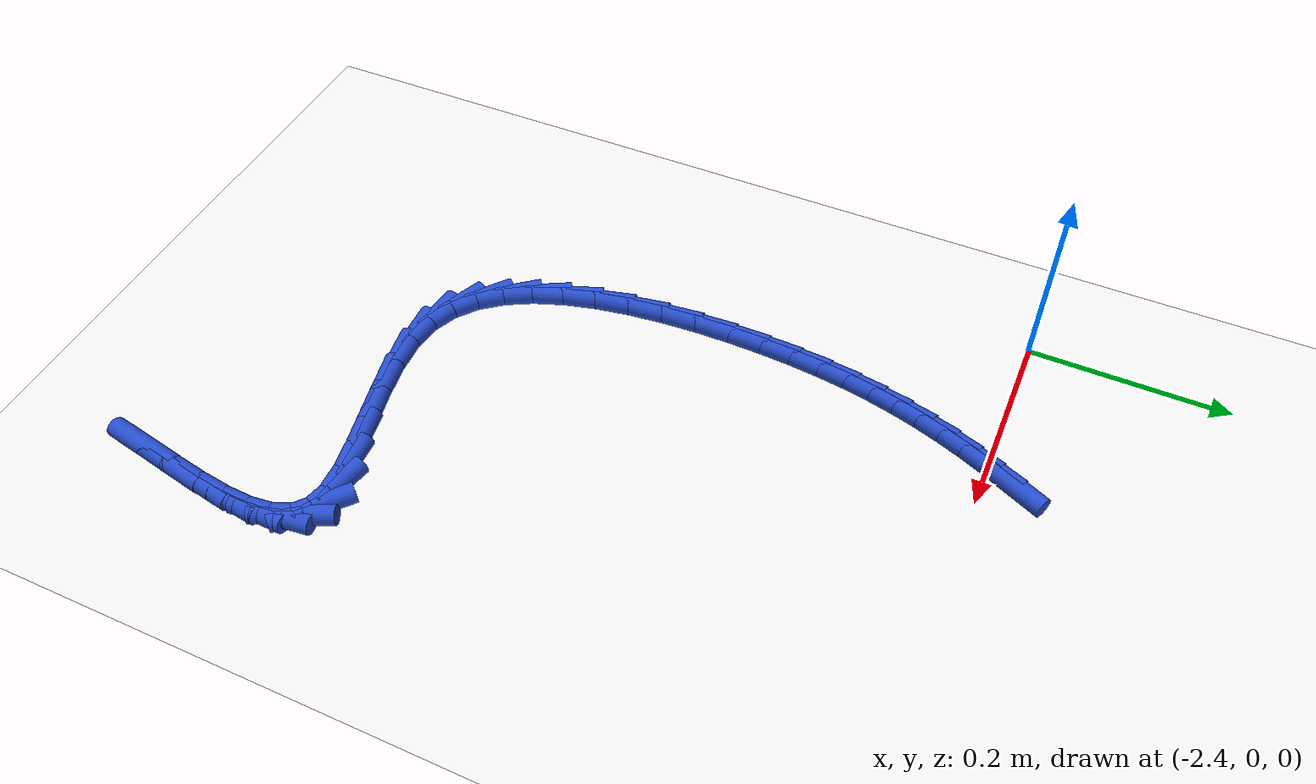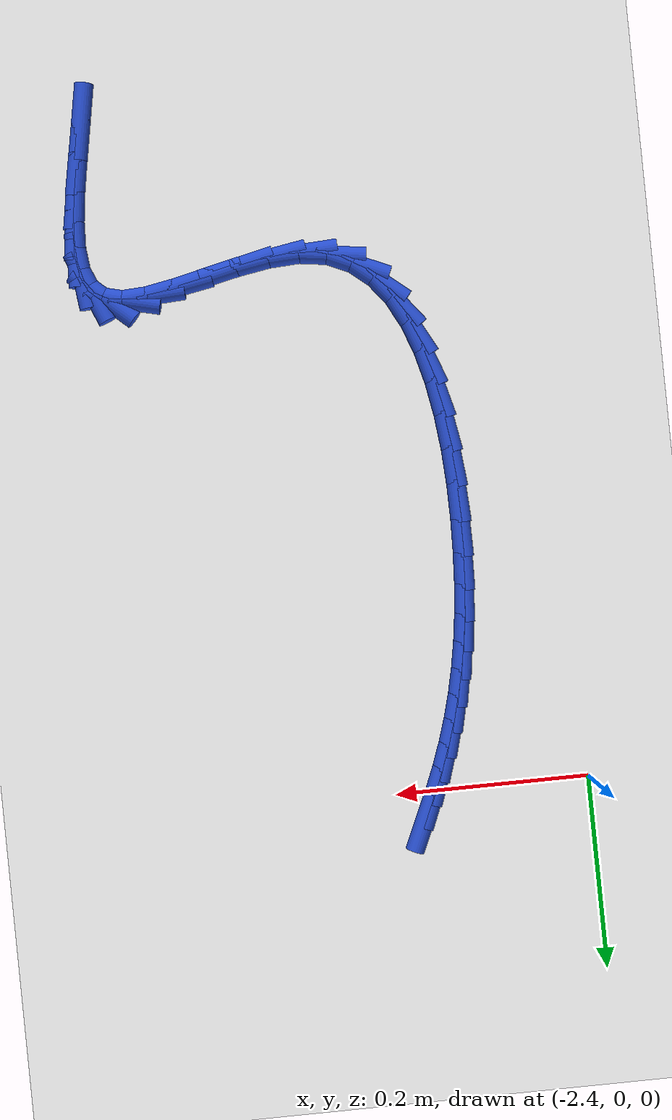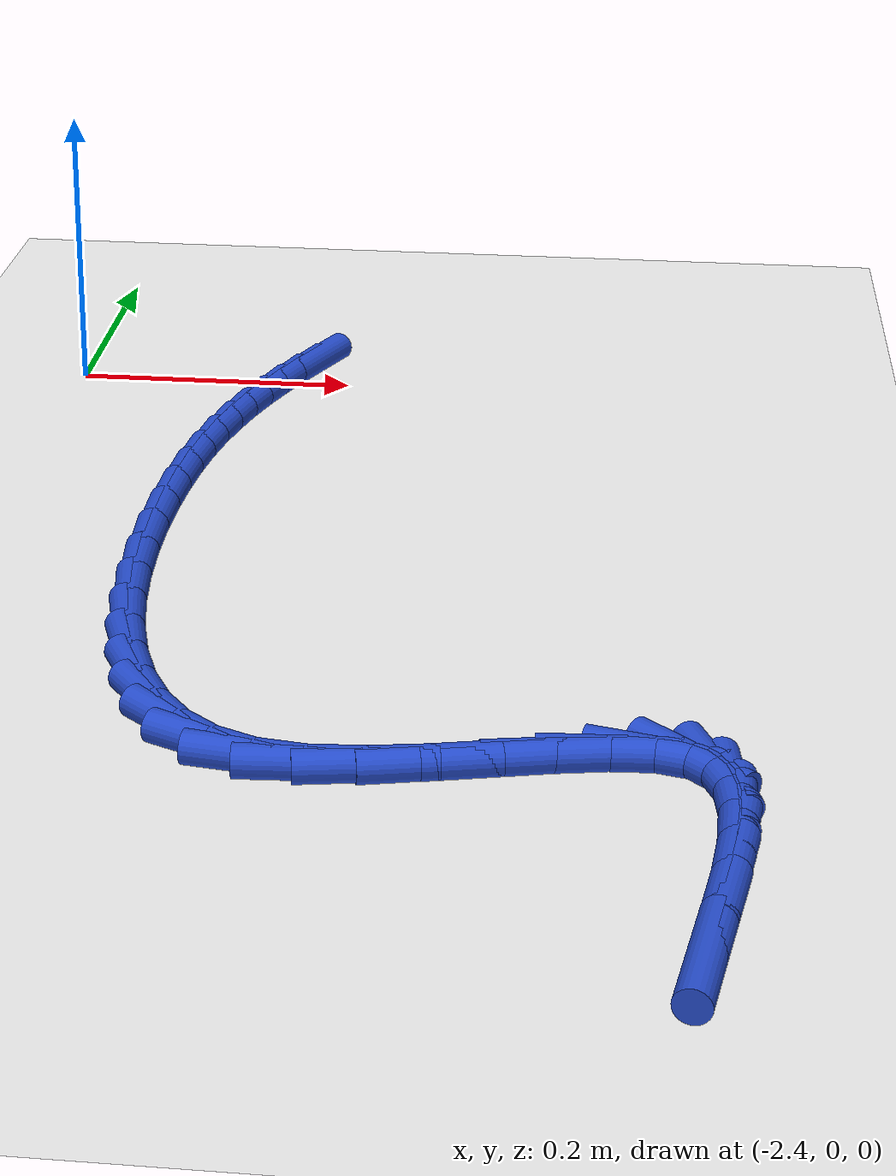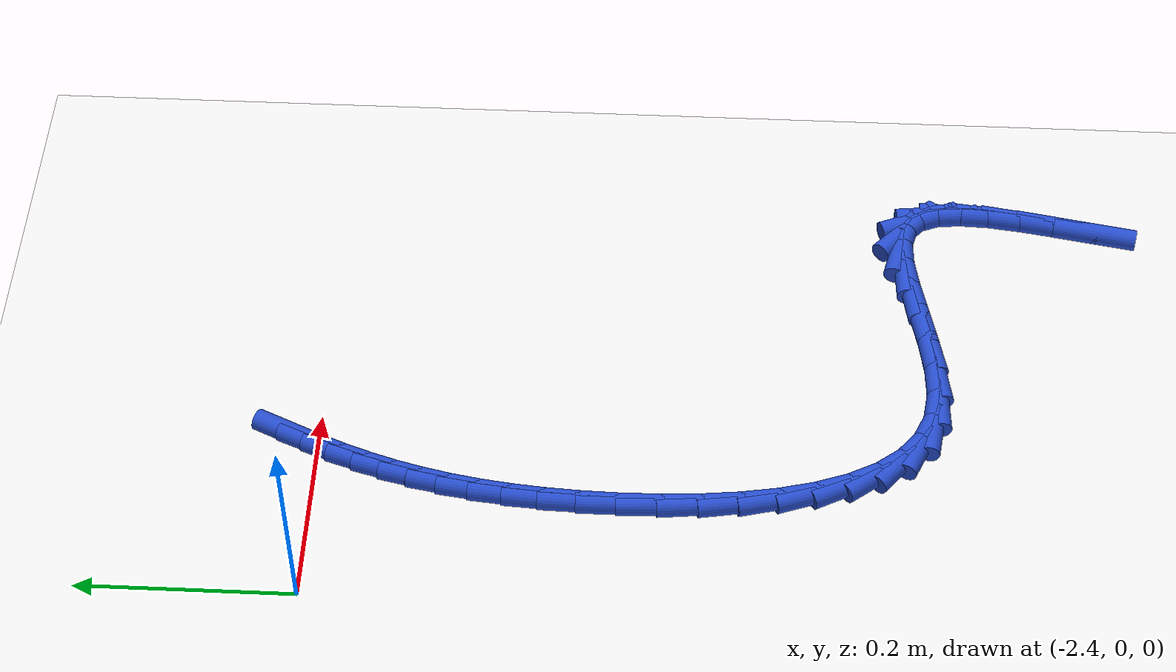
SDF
<sdf version="1.6">
 <world name="default">
  <model name="ground_plane">
   <static>1</static>
   <link name="link">
    <collision name="collision">
     <geometry><plane><normal>0 0 1</normal><size>100 100</size></plane></geometry>
     <surface><friction><ode><mu>100</mu><mu2>50</mu2></ode></friction></surface>
    </collision>
    <visual name="visual">
     <cast_shadows>0</cast_shadows>
     <geometry><plane><normal>0 0 1</normal><size>100 100</size></plane></geometry>
     <material>
      <script><uri>file://media/materials/scripts/gazebo.material</uri><name>Gazebo/WhiteGlow</name></script>
     </material>
    </visual>
   </link>
  </model>
  <model name="line">
   <link name="link_147">
    <pose>-2.2293022533035125 0.022018217716431213 0.01 0 1.57 1.14539514654114</pose>
    <collision name="collision">
     <geometry><cylinder><radius>0.01</radius><length>0.08</length></cylinder></geometry>
    </collision>
    <visual name="visual">
     <material>
      <script><name>Gazebo/Blue</name><uri>file://media/materials/scripts/gazebo.material</uri></script>
     </material>
     <geometry><cylinder><radius>0.01</radius><length>0.08</length></cylinder></geometry>
    </visual>
   </link>
   <link name="link_148">
    <pose>-2.2399668761067986 -0.0015205355810273269 0.01 0 1.57 1.1798494708217089</pose>
    <collision name="collision">
     <geometry><cylinder><radius>0.01</radius><length>0.08</length></cylinder></geometry>
    </collision>
    <visual name="visual">
     <material>
      <script><name>Gazebo/Blue</name><uri>file://media/materials/scripts/gazebo.material</uri></script>
     </material>
     <geometry><cylinder><radius>0.01</radius><length>0.08</length></cylinder></geometry>
    </visual>
   </link>
   <link name="link_149">
    <pose>-2.249721285779182 -0.025186970621011696 0.01 0 1.57 1.2184455703853432</pose>
    <collision name="collision">
     <geometry><cylinder><radius>0.01</radius><length>0.08</length></cylinder></geometry>
    </collision>
    <visual name="visual">
     <material>
      <script><name>Gazebo/Blue</name><uri>file://media/materials/scripts/gazebo.material</uri></script>
     </material>
     <geometry><cylinder><radius>0.01</radius><length>0.08</length></cylinder></geometry>
    </visual>
   </link>
   <link name="link_150">
    <pose>-2.2585500509302046 -0.04919809563989973 0.01 0 1.57 1.260193433835013</pose>
    <collision name="collision">
     <geometry><cylinder><radius>0.01</radius><length>0.08</length></cylinder></geometry>
    </collision>
    <visual name="visual">
     <material>
      <script><name>Gazebo/Blue</name><uri>file://media/materials/scripts/gazebo.material</uri></script>
     </material>
     <geometry><cylinder><radius>0.01</radius><length>0.08</length></cylinder></geometry>
    </visual>
   </link>
   <link name="link_151">
    <pose>-2.266437740169407 -0.07377091887406934 0.01 0 1.57 1.3039155250920373</pose>
    <collision name="collision">
     <geometry><cylinder><radius>0.01</radius><length>0.08</length></cylinder></geometry>
    </collision>
    <visual name="visual">
     <material>
      <script><name>Gazebo/Blue</name><uri>file://media/materials/scripts/gazebo.material</uri></script>
     </material>
     <geometry><cylinder><radius>0.01</radius><length>0.08</length></cylinder></geometry>
    </visual>
   </link>
   <link name="link_152">
    <pose>-2.273368922106329 -0.09912244855989748 0.01 0 1.57 1.34835817873715</pose>
    <collision name="collision">
     <geometry><cylinder><radius>0.01</radius><length>0.08</length></cylinder></geometry>
    </collision>
    <visual name="visual">
     <material>
      <script><name>Gazebo/Blue</name><uri>file://media/materials/scripts/gazebo.material</uri></script>
     </material>
     <geometry><cylinder><radius>0.01</radius><length>0.08</length></cylinder></geometry>
    </visual>
   </link>
   <link name="link_153">
    <pose>-2.279328165350513 -0.12546969293376367 0.01 0 1.57 1.392314034006332</pose>
    <collision name="collision">
     <geometry><cylinder><radius>0.01</radius><length>0.08</length></cylinder></geometry>
    </collision>
    <visual name="visual">
     <material>
      <script><name>Gazebo/Blue</name><uri>file://media/materials/scripts/gazebo.material</uri></script>
     </material>
     <geometry><cylinder><radius>0.01</radius><length>0.08</length></cylinder></geometry>
    </visual>
   </link>
   <link name="link_154">
    <pose>-2.284300038511497 -0.1530296602320449 0.01 0 1.57 1.4347291450769413</pose>
    <collision name="collision">
     <geometry><cylinder><radius>0.01</radius><length>0.08</length></cylinder></geometry>
    </collision>
    <visual name="visual">
     <material>
      <script><name>Gazebo/Blue</name><uri>file://media/materials/scripts/gazebo.material</uri></script>
     </material>
     <geometry><cylinder><radius>0.01</radius><length>0.08</length></cylinder></geometry>
    </visual>
   </link>
   <link name="link_155">
    <pose>-2.2882691101988226 -0.18201935869111913 0.01 0 1.57 1.4747745838631596</pose>
    <collision name="collision">
     <geometry><cylinder><radius>0.01</radius><length>0.08</length></cylinder></geometry>
    </collision>
    <visual name="visual">
     <material>
      <script><name>Gazebo/Blue</name><uri>file://media/materials/scripts/gazebo.material</uri></script>
     </material>
     <geometry><cylinder><radius>0.01</radius><length>0.08</length></cylinder></geometry>
    </visual>
   </link>
   <link name="link_156">
    <pose>-2.2912199490220306 -0.21265579654736405 0.01 0 1.57 1.5118749578834778</pose>
    <collision name="collision">
     <geometry><cylinder><radius>0.01</radius><length>0.08</length></cylinder></geometry>
    </collision>
    <visual name="visual">
     <material>
      <script><name>Gazebo/Blue</name><uri>file://media/materials/scripts/gazebo.material</uri></script>
     </material>
     <geometry><cylinder><radius>0.01</radius><length>0.08</length></cylinder></geometry>
    </visual>
   </link>
   <link name="link_157">
    <pose>-2.293137123590662 -0.2451559820371576 0.01 0 1.57 1.5462883681042139</pose>
    <collision name="collision">
     <geometry><cylinder><radius>0.01</radius><length>0.08</length></cylinder></geometry>
    </collision>
    <visual name="visual">
     <material>
      <script><name>Gazebo/Blue</name><uri>file://media/materials/scripts/gazebo.material</uri></script>
     </material>
     <geometry><cylinder><radius>0.01</radius><length>0.08</length></cylinder></geometry>
    </visual>
   </link>
   <link name="link_158">
    <pose>-2.2939826356816755 -0.27964856512409064 0.01 0 1.57 -1.5587028253850286</pose>
    <collision name="collision">
     <geometry><cylinder><radius>0.01</radius><length>0.08</length></cylinder></geometry>
    </collision>
    <visual name="visual">
     <material>
      <script><name>Gazebo/Blue</name><uri>file://media/materials/scripts/gazebo.material</uri></script>
     </material>
     <geometry><cylinder><radius>0.01</radius><length>0.08</length></cylinder></geometry>
    </visual>
   </link>
   <link name="link_159">
    <pose>-2.2935479047295555 -0.31559429693856667 0.01 0 1.57 -1.516096255975923</pose>
    <collision name="collision">
     <geometry><cylinder><radius>0.01</radius><length>0.08</length></cylinder></geometry>
    </collision>
    <visual name="visual">
     <material>
      <script><name>Gazebo/Blue</name><uri>file://media/materials/scripts/gazebo.material</uri></script>
     </material>
     <geometry><cylinder><radius>0.01</radius><length>0.08</length></cylinder></geometry>
    </visual>
   </link>
   <link name="link_160">
    <pose>-2.2915463822357287 -0.35214865263249256 0.01 0 1.57 -1.4650361717178302</pose>
    <collision name="collision">
     <geometry><cylinder><radius>0.01</radius><length>0.08</length></cylinder></geometry>
    </collision>
    <visual name="visual">
     <material>
      <script><name>Gazebo/Blue</name><uri>file://media/materials/scripts/gazebo.material</uri></script>
     </material>
     <geometry><cylinder><radius>0.01</radius><length>0.08</length></cylinder></geometry>
    </visual>
   </link>
   <link name="link_161">
    <pose>-2.2876911183287 -0.3884655358205151 0.01 0 1.57 -1.4022326163964587</pose>
    <collision name="collision">
     <geometry><cylinder><radius>0.01</radius><length>0.08</length></cylinder></geometry>
    </collision>
    <visual name="visual">
     <material>
      <script><name>Gazebo/Blue</name><uri>file://media/materials/scripts/gazebo.material</uri></script>
     </material>
     <geometry><cylinder><radius>0.01</radius><length>0.08</length></cylinder></geometry>
    </visual>
   </link>
   <link name="link_162">
    <pose>-2.2816951631369724 -0.4236988501172806 0.01 0 1.57 -1.3230589770904797</pose>
    <collision name="collision">
     <geometry><cylinder><radius>0.01</radius><length>0.08</length></cylinder></geometry>
    </collision>
    <visual name="visual">
     <material>
      <script><name>Gazebo/Blue</name><uri>file://media/materials/scripts/gazebo.material</uri></script>
     </material>
     <geometry><cylinder><radius>0.01</radius><length>0.08</length></cylinder></geometry>
    </visual>
   </link>
   <link name="link_163">
    <pose>-2.2732715667890497 -0.45700249913743557 0.01 0 1.57 -1.2209513089411188</pose>
    <collision name="collision">
     <geometry><cylinder><radius>0.01</radius><length>0.08</length></cylinder></geometry>
    </collision>
    <visual name="visual">
     <material>
      <script><name>Gazebo/Blue</name><uri>file://media/materials/scripts/gazebo.material</uri></script>
     </material>
     <geometry><cylinder><radius>0.01</radius><length>0.08</length></cylinder></geometry>
    </visual>
   </link>
   <link name="link_164">
    <pose>-2.2621333794134375 -0.4875303864956267 0.01 0 1.57 -1.0869396795225534</pose>
    <collision name="collision">
     <geometry><cylinder><radius>0.01</radius><length>0.08</length></cylinder></geometry>
    </collision>
    <visual name="visual">
     <material>
      <script><name>Gazebo/Blue</name><uri>file://media/materials/scripts/gazebo.material</uri></script>
     </material>
     <geometry><cylinder><radius>0.01</radius><length>0.08</length></cylinder></geometry>
    </visual>
   </link>
   <link name="link_165">
    <pose>-2.2479936511386387 -0.5144364158065003 0.01 0 1.57 -0.9104093059087011</pose>
    <collision name="collision">
     <geometry><cylinder><radius>0.01</radius><length>0.08</length></cylinder></geometry>
    </collision>
    <visual name="visual">
     <material>
      <script><name>Gazebo/Blue</name><uri>file://media/materials/scripts/gazebo.material</uri></script>
     </material>
     <geometry><cylinder><radius>0.01</radius><length>0.08</length></cylinder></geometry>
    </visual>
   </link>
   <link name="link_166">
    <pose>-2.2305654320931576 -0.536874490684703 0.01 0 1.57 -0.6839934064867519</pose>
    <collision name="collision">
     <geometry><cylinder><radius>0.01</radius><length>0.08</length></cylinder></geometry>
    </collision>
    <visual name="visual">
     <material>
      <script><name>Gazebo/Blue</name><uri>file://media/materials/scripts/gazebo.material</uri></script>
     </material>
     <geometry><cylinder><radius>0.01</radius><length>0.08</length></cylinder></geometry>
    </visual>
   </link>
   <link name="link_167">
    <pose>-2.209561772405498 -0.553998514744881 0.01 0 1.57 -0.41527530314098765</pose>
    <collision name="collision">
     <geometry><cylinder><radius>0.01</radius><length>0.08</length></cylinder></geometry>
    </collision>
    <visual name="visual">
     <material>
      <script><name>Gazebo/Blue</name><uri>file://media/materials/scripts/gazebo.material</uri></script>
     </material>
     <geometry><cylinder><radius>0.01</radius><length>0.08</length></cylinder></geometry>
    </visual>
   </link>
   <link name="link_168">
    <pose>-2.184695722204164 -0.5649623916016812 0.01 0 1.57 -0.14164230097749342</pose>
    <collision name="collision">
     <geometry><cylinder><radius>0.01</radius><length>0.08</length></cylinder></geometry>
    </collision>
    <visual name="visual">
     <material>
      <script><name>Gazebo/Blue</name><uri>file://media/materials/scripts/gazebo.material</uri></script>
     </material>
     <geometry><cylinder><radius>0.01</radius><length>0.08</length></cylinder></geometry>
    </visual>
   </link>
   <link name="link_169">
    <pose>-2.155785301786042 -0.5690849365934734 0.01 0 1.57 0.05376028622897564</pose>
    <collision name="collision">
     <geometry><cylinder><radius>0.01</radius><length>0.08</length></cylinder></geometry>
    </collision>
    <visual name="visual">
     <material>
      <script><name>Gazebo/Blue</name><uri>file://media/materials/scripts/gazebo.material</uri></script>
     </material>
     <geometry><cylinder><radius>0.01</radius><length>0.08</length></cylinder></geometry>
    </visual>
   </link>
   <link name="link_170">
    <pose>-2.1237141704974305 -0.5673591204421823 0.01 0 1.57 0.16471639781728226</pose>
    <collision name="collision">
     <geometry><cylinder><radius>0.01</radius><length>0.08</length></cylinder></geometry>
    </collision>
    <visual name="visual">
     <material>
      <script><name>Gazebo/Blue</name><uri>file://media/materials/scripts/gazebo.material</uri></script>
     </material>
     <geometry><cylinder><radius>0.01</radius><length>0.08</length></cylinder></geometry>
    </visual>
   </link>
   <link name="link_171">
    <pose>-2.0899865468326753 -0.5617528335098099 0.01 0 1.57 0.21809493320611767</pose>
    <collision name="collision">
     <geometry><cylinder><radius>0.01</radius><length>0.08</length></cylinder></geometry>
    </collision>
    <visual name="visual">
     <material>
      <script><name>Gazebo/Blue</name><uri>file://media/materials/scripts/gazebo.material</uri></script>
     </material>
     <geometry><cylinder><radius>0.01</radius><length>0.08</length></cylinder></geometry>
    </visual>
   </link>
   <link name="link_172">
    <pose>-2.0561143611430457 -0.5542460817492733 0.01 0 1.57 0.22463918809555583</pose>
    <collision name="collision">
     <geometry><cylinder><radius>0.01</radius><length>0.08</length></cylinder></geometry>
    </collision>
    <visual name="visual">
     <material>
      <script><name>Gazebo/Blue</name><uri>file://media/materials/scripts/gazebo.material</uri></script>
     </material>
     <geometry><cylinder><radius>0.01</radius><length>0.08</length></cylinder></geometry>
    </visual>
   </link>
   <link name="link_173">
    <pose>-2.0236095437798087 -0.5468188711134899 0.01 0 1.57 0.17923933354413257</pose>
    <collision name="collision">
     <geometry><cylinder><radius>0.01</radius><length>0.08</length></cylinder></geometry>
    </collision>
    <visual name="visual">
     <material>
      <script><name>Gazebo/Blue</name><uri>file://media/materials/scripts/gazebo.material</uri></script>
     </material>
     <geometry><cylinder><radius>0.01</radius><length>0.08</length></cylinder></geometry>
    </visual>
   </link>
   <link name="link_174">
    <pose>-1.9939840250942338 -0.5414512075553767 0.01 0 1.57 0.0525826671814544</pose>
    <collision name="collision">
     <geometry><cylinder><radius>0.01</radius><length>0.08</length></cylinder></geometry>
    </collision>
    <visual name="visual">
     <material>
      <script><name>Gazebo/Blue</name><uri>file://media/materials/scripts/gazebo.material</uri></script>
     </material>
     <geometry><cylinder><radius>0.01</radius><length>0.08</length></cylinder></geometry>
    </visual>
   </link>
   <link name="link_175">
    <pose>-1.9687497354375891 -0.540123097027851 0.01 0 1.57 -0.23675587236645013</pose>
    <collision name="collision">
     <geometry><cylinder><radius>0.01</radius><length>0.08</length></cylinder></geometry>
    </collision>
    <visual name="visual">
     <material>
      <script><name>Gazebo/Blue</name><uri>file://media/materials/scripts/gazebo.material</uri></script>
     </material>
     <geometry><cylinder><radius>0.01</radius><length>0.08</length></cylinder></geometry>
    </visual>
   </link>
   <link name="link_176">
    <pose>-1.949398902951457 -0.5447920854714148 0.01 0 1.57 -0.7285792184055871</pose>
    <collision name="collision">
     <geometry><cylinder><radius>0.01</radius><length>0.08</length></cylinder></geometry>
    </collision>
    <visual name="visual">
     <material>
      <script><name>Gazebo/Blue</name><uri>file://media/materials/scripts/gazebo.material</uri></script>
     </material>
     <geometry><cylinder><radius>0.01</radius><length>0.08</length></cylinder></geometry>
    </visual>
   </link>
   <link name="link_177">
    <pose>-1.936470436441006 -0.5563289592969025 0.01 0 1.57 -1.178864932538584</pose>
    <collision name="collision">
     <geometry><cylinder><radius>0.01</radius><length>0.08</length></cylinder></geometry>
    </collision>
    <visual name="visual">
     <material>
      <script><name>Gazebo/Blue</name><uri>file://media/materials/scripts/gazebo.material</uri></script>
     </material>
     <geometry><cylinder><radius>0.01</radius><length>0.08</length></cylinder></geometry>
    </visual>
   </link>
   <link name="link_178">
    <pose>-1.9291440050110051 -0.5740550066084568 0.01 0 1.57 -1.4567143491318186</pose>
    <collision name="collision">
     <geometry><cylinder><radius>0.01</radius><length>0.08</length></cylinder></geometry>
    </collision>
    <visual name="visual">
     <material>
      <script><name>Gazebo/Blue</name><uri>file://media/materials/scripts/gazebo.material</uri></script>
     </material>
     <geometry><cylinder><radius>0.01</radius><length>0.08</length></cylinder></geometry>
    </visual>
   </link>
   <link name="link_179">
    <pose>-1.9264951754594704 -0.5971728415574298 0.01 0 1.57 1.5309671670955107</pose>
    <collision name="collision">
     <geometry><cylinder><radius>0.01</radius><length>0.08</length></cylinder></geometry>
    </collision>
    <visual name="visual">
     <material>
      <script><name>Gazebo/Blue</name><uri>file://media/materials/scripts/gazebo.material</uri></script>
     </material>
     <geometry><cylinder><radius>0.01</radius><length>0.08</length></cylinder></geometry>
    </visual>
   </link>
   <link name="link_180">
    <pose>-1.9275995145844198 -0.6248850782951741 0.01 0 1.57 1.4466157644514595</pose>
    <collision name="collision">
     <geometry><cylinder><radius>0.01</radius><length>0.08</length></cylinder></geometry>
    </collision>
    <visual name="visual">
     <material>
      <script><name>Gazebo/Blue</name><uri>file://media/materials/scripts/gazebo.material</uri></script>
     </material>
     <geometry><cylinder><radius>0.01</radius><length>0.08</length></cylinder></geometry>
    </visual>
   </link>
   <link name="link_181">
    <pose>-1.9315325891838684 -0.6563943309730416 0.01 0 1.57 1.4032267943601229</pose>
    <collision name="collision">
     <geometry><cylinder><radius>0.01</radius><length>0.08</length></cylinder></geometry>
    </collision>
    <visual name="visual">
     <material>
      <script><name>Gazebo/Blue</name><uri>file://media/materials/scripts/gazebo.material</uri></script>
     </material>
     <geometry><cylinder><radius>0.01</radius><length>0.08</length></cylinder></geometry>
    </visual>
   </link>
   <link name="link_182">
    <pose>-1.9373699660558348 -0.6909032137423851 0.01 0 1.57 1.3871880824567293</pose>
    <collision name="collision">
     <geometry><cylinder><radius>0.01</radius><length>0.08</length></cylinder></geometry>
    </collision>
    <visual name="visual">
     <material>
      <script><name>Gazebo/Blue</name><uri>file://media/materials/scripts/gazebo.material</uri></script>
     </material>
     <geometry><cylinder><radius>0.01</radius><length>0.08</length></cylinder></geometry>
    </visual>
   </link>
   <link name="link_183">
    <pose>-1.9441872119983334 -0.7276143407545562 0.01 0 1.57 1.392403426245344</pose>
    <collision name="collision">
     <geometry><cylinder><radius>0.01</radius><length>0.08</length></cylinder></geometry>
    </collision>
    <visual name="visual">
     <material>
      <script><name>Gazebo/Blue</name><uri>file://media/materials/scripts/gazebo.material</uri></script>
     </material>
     <geometry><cylinder><radius>0.01</radius><length>0.08</length></cylinder></geometry>
    </visual>
   </link>
  </model>
 </world>
</sdf>
